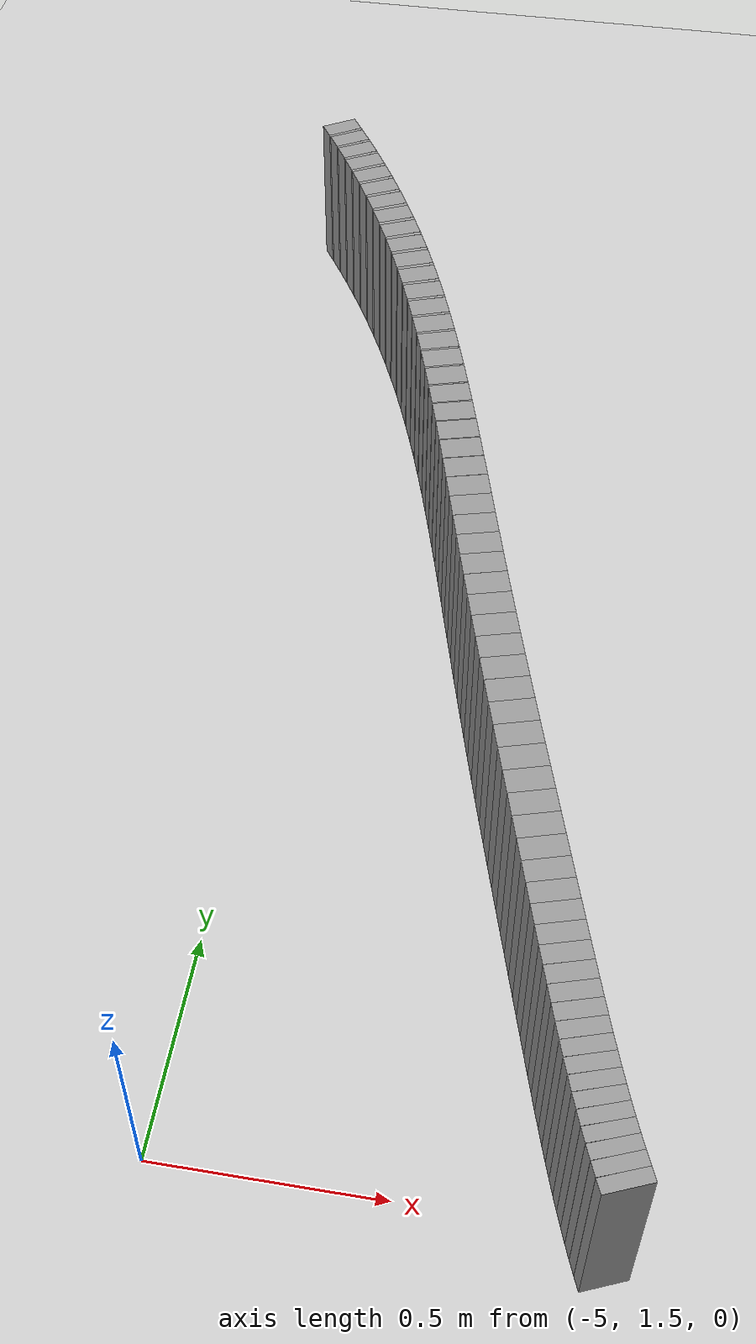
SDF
<sdf version="1.6">
 <world name="default">
  <include><uri>model://ground_plane</uri></include>
  <include><uri>model://sun</uri></include>
  <model name="wall_76_inward">
   <static>true</static>
   <link name="link">
    <collision name="collision">
     <geometry><box><size>0.030319023300365844 0.1 0.45</size></box></geometry>
    </collision>
    <visual name="visual">
     <geometry><box><size>0.030319023300365844 0.1 0.45</size></box></geometry>
     <material>
      <script><uri>file://media/materials/scripts/gazebo.material</uri><name>Gazebo/Gray</name></script>
     </material>
    </visual>
   </link>
   <pose>-4.083722998648623 1.42015074149503 0.225 0 0 1.9614236395496756</pose>
  </model>
  <model name="wall_77_inward">
   <static>true</static>
   <link name="link">
    <collision name="collision">
     <geometry><box><size>0.030381391725785217 0.1 0.45</size></box></geometry>
    </collision>
    <visual name="visual">
     <geometry><box><size>0.030381391725785217 0.1 0.45</size></box></geometry>
     <material>
      <script><uri>file://media/materials/scripts/gazebo.material</uri><name>Gazebo/Gray</name></script>
     </material>
    </visual>
   </link>
   <pose>-4.095088864896672 1.448291637710838 0.225 0 0 1.947895979240771</pose>
  </model>
  <model name="wall_78_inward">
   <static>true</static>
   <link name="link">
    <collision name="collision">
     <geometry><box><size>0.03056995240121738 0.1 0.45</size></box></geometry>
    </collision>
    <visual name="visual">
     <geometry><box><size>0.03056995240121738 0.1 0.45</size></box></geometry>
     <material>
      <script><uri>file://media/materials/scripts/gazebo.material</uri><name>Gazebo/Gray</name></script>
     </material>
    </visual>
   </link>
   <pose>-4.106127991504734 1.4766970253834102 0.225 0 0 1.935065525622302</pose>
  </model>
  <model name="wall_79_inward">
   <static>true</static>
   <link name="link">
    <collision name="collision">
     <geometry><box><size>0.030880842736962934 0.1 0.45</size></box></geometry>
    </collision>
    <visual name="visual">
     <geometry><box><size>0.030880842736962934 0.1 0.45</size></box></geometry>
     <material>
      <script><uri>file://media/materials/scripts/gazebo.material</uri><name>Gazebo/Gray</name></script>
     </material>
    </visual>
   </link>
   <pose>-4.116900733599415 1.5054713895411937 0.225 0 0 1.9230538203729624</pose>
  </model>
  <model name="wall_80_inward">
   <static>true</static>
   <link name="link">
    <collision name="collision">
     <geometry><box><size>0.0313265982805998 0.1 0.45</size></box></geometry>
    </collision>
    <visual name="visual">
     <geometry><box><size>0.0313265982805998 0.1 0.45</size></box></geometry>
     <material>
      <script><uri>file://media/materials/scripts/gazebo.material</uri><name>Gazebo/Gray</name></script>
     </material>
    </visual>
   </link>
   <pose>-4.127468715098411 1.5347242434167483 0.225 0 0 1.911965209870264</pose>
  </model>
  <model name="wall_81_inward">
   <static>true</static>
   <link name="link">
    <collision name="collision">
     <geometry><box><size>0.03191141682992299 0.1 0.45</size></box></geometry>
    </collision>
    <visual name="visual">
     <geometry><box><size>0.03191141682992299 0.1 0.45</size></box></geometry>
     <material>
      <script><uri>file://media/materials/scripts/gazebo.material</uri><name>Gazebo/Gray</name></script>
     </material>
    </visual>
   </link>
   <pose>-4.137896619692121 1.564573785705496 0.225 0 0 1.9019097405112775</pose>
  </model>
  <model name="wall_82_inward">
   <static>true</static>
   <link name="link">
    <collision name="collision">
     <geometry><box><size>0.03262443848653379 0.1 0.45</size></box></geometry>
    </collision>
    <visual name="visual">
     <geometry><box><size>0.03262443848653379 0.1 0.45</size></box></geometry>
     <material>
      <script><uri>file://media/materials/scripts/gazebo.material</uri><name>Gazebo/Gray</name></script>
     </material>
    </visual>
   </link>
   <pose>-4.148248470323871 1.595135812456744 0.225 0 0 1.892956235877337</pose>
  </model>
  <model name="wall_83_inward">
   <static>true</static>
   <link name="link">
    <collision name="collision">
     <geometry><box><size>0.033474792408341704 0.1 0.45</size></box></geometry>
    </collision>
    <visual name="visual">
     <geometry><box><size>0.033474792408341704 0.1 0.45</size></box></geometry>
     <material>
      <script><uri>file://media/materials/scripts/gazebo.material</uri><name>Gazebo/Gray</name></script>
     </material>
    </visual>
   </link>
   <pose>-4.15858770890194 1.6265262632300375 0.225 0 0 1.8851055922462476</pose>
  </model>
  <model name="wall_84_inward">
   <static>true</static>
   <link name="link">
    <collision name="collision">
     <geometry><box><size>0.03448067750370846 0.1 0.45</size></box></geometry>
    </collision>
    <visual name="visual">
     <geometry><box><size>0.03448067750370846 0.1 0.45</size></box></geometry>
     <material>
      <script><uri>file://media/materials/scripts/gazebo.material</uri><name>Gazebo/Gray</name></script>
     </material>
    </visual>
   </link>
   <pose>-4.1689820149863674 1.65887486222929 0.225 0 0 1.8783892637810817</pose>
  </model>
  <model name="wall_85_inward">
   <static>true</static>
   <link name="link">
    <collision name="collision">
     <geometry><box><size>0.035640017745385284 0.1 0.45</size></box></geometry>
    </collision>
    <visual name="visual">
     <geometry><box><size>0.035640017745385284 0.1 0.45</size></box></geometry>
     <material>
      <script><uri>file://media/materials/scripts/gazebo.material</uri><name>Gazebo/Gray</name></script>
     </material>
    </visual>
   </link>
   <pose>-4.179501851843207 1.692319613194485 0.225 0 0 1.8727873901990257</pose>
  </model>
  <model name="wall_86_inward">
   <static>true</static>
   <link name="link">
    <collision name="collision">
     <geometry><box><size>0.036971243010525935 0.1 0.45</size></box></geometry>
    </collision>
    <visual name="visual">
     <geometry><box><size>0.036971243010525935 0.1 0.45</size></box></geometry>
     <material>
      <script><uri>file://media/materials/scripts/gazebo.material</uri><name>Gazebo/Gray</name></script>
     </material>
    </visual>
   </link>
   <pose>-4.1902198125021854 1.7270070365175005 0.225 0 0 1.86825075929407</pose>
  </model>
  <model name="wall_87_inward">
   <static>true</static>
   <link name="link">
    <collision name="collision">
     <geometry><box><size>0.038470409050723214 0.1 0.45</size></box></geometry>
    </collision>
    <visual name="visual">
     <geometry><box><size>0.038470409050723214 0.1 0.45</size></box></geometry>
     <material>
      <script><uri>file://media/materials/scripts/gazebo.material</uri><name>Gazebo/Gray</name></script>
     </material>
    </visual>
   </link>
   <pose>-4.201210832708388 1.7630910194615392 0.225 0 0 1.8647465962478298</pose>
  </model>
  <model name="wall_88_inward">
   <static>true</static>
   <link name="link">
    <collision name="collision">
     <geometry><box><size>0.04011837200861201 0.1 0.45</size></box></geometry>
    </collision>
    <visual name="visual">
     <geometry><box><size>0.04011837200861201 0.1 0.45</size></box></geometry>
     <material>
      <script><uri>file://media/materials/scripts/gazebo.material</uri><name>Gazebo/Gray</name></script>
     </material>
    </visual>
   </link>
   <pose>-4.212546052525328 1.8007149391095922 0.225 0 0 1.8621561721947897</pose>
  </model>
  <model name="wall_89_inward">
   <static>true</static>
   <link name="link">
    <collision name="collision">
     <geometry><box><size>0.04190729564380184 0.1 0.45</size></box></geometry>
    </collision>
    <visual name="visual">
     <geometry><box><size>0.04190729564380184 0.1 0.45</size></box></geometry>
     <material>
      <script><uri>file://media/materials/scripts/gazebo.material</uri><name>Gazebo/Gray</name></script>
     </material>
    </visual>
   </link>
   <pose>-4.224291207717447 1.840010008996081 0.225 0 0 1.8603636086512862</pose>
  </model>
  <model name="wall_90_inward">
   <static>true</static>
   <link name="link">
    <collision name="collision">
     <geometry><box><size>0.04380874023937896 0.1 0.45</size></box></geometry>
    </collision>
    <visual name="visual">
     <geometry><box><size>0.04380874023937896 0.1 0.45</size></box></geometry>
     <material>
      <script><uri>file://media/materials/scripts/gazebo.material</uri><name>Gazebo/Gray</name></script>
     </material>
    </visual>
   </link>
   <pose>-4.236504903136588 1.8810908409309945 0.225 0 0 1.859226345151389</pose>
  </model>
  <model name="wall_91_inward">
   <static>true</static>
   <link name="link">
    <collision name="collision">
     <geometry><box><size>0.04579325214460293 0.1 0.45</size></box></geometry>
    </collision>
    <visual name="visual">
     <geometry><box><size>0.04579325214460293 0.1 0.45</size></box></geometry>
     <material>
      <script><uri>file://media/materials/scripts/gazebo.material</uri><name>Gazebo/Gray</name></script>
     </material>
    </visual>
   </link>
   <pose>-4.249234490659106 1.924045312863817 0.225 0 0 1.8585912795525938</pose>
  </model>
  <model name="wall_92_inward">
   <static>true</static>
   <link name="link">
    <collision name="collision">
     <geometry><box><size>0.047820306115570706 0.1 0.45</size></box></geometry>
    </collision>
    <visual name="visual">
     <geometry><box><size>0.047820306115570706 0.1 0.45</size></box></geometry>
     <material>
      <script><uri>file://media/materials/scripts/gazebo.material</uri><name>Gazebo/Gray</name></script>
     </material>
    </visual>
   </link>
   <pose>-4.262513613274464 1.9689289338387903 0.225 0 0 1.8583101306572916</pose>
  </model>
  <model name="wall_93_inward">
   <static>true</static>
   <link name="link">
    <collision name="collision">
     <geometry><box><size>0.049852039311536415 0.1 0.45</size></box></geometry>
    </collision>
    <visual name="visual">
     <geometry><box><size>0.049852039311536415 0.1 0.45</size></box></geometry>
     <material>
      <script><uri>file://media/materials/scripts/gazebo.material</uri><name>Gazebo/Gray</name></script>
     </material>
    </visual>
   </link>
   <pose>-4.276360370694459 2.0157609642385803 0.225 0 0 1.858240459196426</pose>
  </model>
  <model name="wall_94_inward">
   <static>true</static>
   <link name="link">
    <collision name="collision">
     <geometry><box><size>0.05180438762171166 0.1 0.45</size></box></geometry>
    </collision>
    <visual name="visual">
     <geometry><box><size>0.05180438762171166 0.1 0.45</size></box></geometry>
     <material>
      <script><uri>file://media/materials/scripts/gazebo.material</uri><name>Gazebo/Gray</name></script>
     </material>
    </visual>
   </link>
   <pose>-4.290770800846749 2.064503623037102 0.225 0 0 1.858261489854648</pose>
  </model>
  <model name="wall_95_inward">
   <static>true</static>
   <link name="link">
    <collision name="collision">
     <geometry><box><size>0.05366156399567377 0.1 0.45</size></box></geometry>
    </collision>
    <visual name="visual">
     <geometry><box><size>0.05366156399567377 0.1 0.45</size></box></geometry>
     <material>
      <script><uri>file://media/materials/scripts/gazebo.material</uri><name>Gazebo/Gray</name></script>
     </material>
    </visual>
   </link>
   <pose>-4.305721133446476 2.1150729249144646 0.225 0 0 1.8582365038689324</pose>
  </model>
  <model name="wall_96_inward">
   <static>true</static>
   <link name="link">
    <collision name="collision">
     <geometry><box><size>0.055356505274068296 0.1 0.45</size></box></geometry>
    </collision>
    <visual name="visual">
     <geometry><box><size>0.055356505274068296 0.1 0.45</size></box></geometry>
     <material>
      <script><uri>file://media/materials/scripts/gazebo.material</uri><name>Gazebo/Gray</name></script>
     </material>
    </visual>
   </link>
   <pose>-4.321170322254241 2.167346794150098 0.225 0 0 1.8580845666562595</pose>
  </model>
  <model name="wall_97_inward">
   <static>true</static>
   <link name="link">
    <collision name="collision">
     <geometry><box><size>0.05684174379270028 0.1 0.45</size></box></geometry>
    </collision>
    <visual name="visual">
     <geometry><box><size>0.05684174379270028 0.1 0.45</size></box></geometry>
     <material>
      <script><uri>file://media/materials/scripts/gazebo.material</uri><name>Gazebo/Gray</name></script>
     </material>
    </visual>
   </link>
   <pose>-4.337056513683885 2.221149587728097 0.225 0 0 1.8577307507502874</pose>
  </model>
  <model name="wall_98_inward">
   <static>true</static>
   <link name="link">
    <collision name="collision">
     <geometry><box><size>0.058089029679050906 0.1 0.45</size></box></geometry>
    </collision>
    <visual name="visual">
     <geometry><box><size>0.058089029679050906 0.1 0.45</size></box></geometry>
     <material>
      <script><uri>file://media/materials/scripts/gazebo.material</uri><name>Gazebo/Gray</name></script>
     </material>
    </visual>
   </link>
   <pose>-4.353302415311186 2.2762707363443493 0.225 0 0 1.8571001591001473</pose>
  </model>
  <model name="wall_99_inward">
   <static>true</static>
   <link name="link">
    <collision name="collision">
     <geometry><box><size>0.05908663020875237 0.1 0.45</size></box></geometry>
    </collision>
    <visual name="visual">
     <geometry><box><size>0.05908663020875237 0.1 0.45</size></box></geometry>
     <material>
      <script><uri>file://media/materials/scripts/gazebo.material</uri><name>Gazebo/Gray</name></script>
     </material>
    </visual>
   </link>
   <pose>-4.369821257920856 2.332481597270765 0.225 0 0 1.8561526930244687</pose>
  </model>
  <model name="wall_100_inward">
   <static>true</static>
   <link name="link">
    <collision name="collision">
     <geometry><box><size>0.059841898510846134 0.1 0.45</size></box></geometry>
    </collision>
    <visual name="visual">
     <geometry><box><size>0.059841898510846134 0.1 0.45</size></box></geometry>
     <material>
      <script><uri>file://media/materials/scripts/gazebo.material</uri><name>Gazebo/Gray</name></script>
     </material>
    </visual>
   </link>
   <pose>-4.386523471320006 2.3895520216642803 0.225 0 0 1.8548662227222592</pose>
  </model>
  <model name="wall_101_inward">
   <static>true</static>
   <link name="link">
    <collision name="collision">
     <geometry><box><size>0.06037321674631728 0.1 0.45</size></box></geometry>
    </collision>
    <visual name="visual">
     <geometry><box><size>0.06037321674631728 0.1 0.45</size></box></geometry>
     <material>
      <script><uri>file://media/materials/scripts/gazebo.material</uri><name>Gazebo/Gray</name></script>
     </material>
    </visual>
   </link>
   <pose>-4.403322500401475 2.447264314383326 0.225 0 0 1.8532446122125774</pose>
  </model>
  <model name="wall_102_inward">
   <static>true</static>
   <link name="link">
    <collision name="collision">
     <geometry><box><size>0.06072071834924461 0.1 0.45</size></box></geometry>
    </collision>
    <visual name="visual">
     <geometry><box><size>0.06072071834924461 0.1 0.45</size></box></geometry>
     <material>
      <script><uri>file://media/materials/scripts/gazebo.material</uri><name>Gazebo/Gray</name></script>
     </material>
    </visual>
   </link>
   <pose>-4.420140676045596 2.5054285712715174 0.225 0 0 1.8512993798372717</pose>
  </model>
  <model name="wall_103_inward">
   <static>true</static>
   <link name="link">
    <collision name="collision">
     <geometry><box><size>0.06094398111122464 0.1 0.45</size></box></geometry>
    </collision>
    <visual name="visual">
     <geometry><box><size>0.06094398111122464 0.1 0.45</size></box></geometry>
     <material>
      <script><uri>file://media/materials/scripts/gazebo.material</uri><name>Gazebo/Gray</name></script>
     </material>
    </visual>
   </link>
   <pose>-4.436916444198189 2.5639020166986497 0.225 0 0 1.8490801075710135</pose>
  </model>
  <model name="wall_104_inward">
   <static>true</static>
   <link name="link">
    <collision name="collision">
     <geometry><box><size>0.06109926342683872 0.1 0.45</size></box></geometry>
    </collision>
    <visual name="visual">
     <geometry><box><size>0.06109926342683872 0.1 0.45</size></box></geometry>
     <material>
      <script><uri>file://media/materials/scripts/gazebo.material</uri><name>Gazebo/Gray</name></script>
     </material>
    </visual>
   </link>
   <pose>-4.453608687352513 2.622596156146551 0.225 0 0 1.8466722286393193</pose>
  </model>
  <model name="wall_105_inward">
   <static>true</static>
   <link name="link">
    <collision name="collision">
     <geometry><box><size>0.06124799802506695 0.1 0.45</size></box></geometry>
    </collision>
    <visual name="visual">
     <geometry><box><size>0.06124799802506695 0.1 0.45</size></box></geometry>
     <material>
      <script><uri>file://media/materials/scripts/gazebo.material</uri><name>Gazebo/Gray</name></script>
     </material>
    </visual>
   </link>
   <pose>-4.47019817499509 2.681477359983434 0.225 0 0 1.8441757637756673</pose>
  </model>
  <model name="wall_106_inward">
   <static>true</static>
   <link name="link">
    <collision name="collision">
     <geometry><box><size>0.06144541243217268 0.1 0.45</size></box></geometry>
    </collision>
    <visual name="visual">
     <geometry><box><size>0.06144541243217268 0.1 0.45</size></box></geometry>
     <material>
      <script><uri>file://media/materials/scripts/gazebo.material</uri><name>Gazebo/Gray</name></script>
     </material>
    </visual>
   </link>
   <pose>-4.486688430696326 2.7405661410998943 0.225 0 0 1.841724023893348</pose>
  </model>
  <model name="wall_107_inward">
   <static>true</static>
   <link name="link">
    <collision name="collision">
     <geometry><box><size>0.061732324679020026 0.1 0.45</size></box></geometry>
    </collision>
    <visual name="visual">
     <geometry><box><size>0.061732324679020026 0.1 0.45</size></box></geometry>
     <material>
      <script><uri>file://media/materials/scripts/gazebo.material</uri><name>Gazebo/Gray</name></script>
     </material>
    </visual>
   </link>
   <pose>-4.503104369669213 2.7999269100924487 0.225 0 0 1.8394783673283182</pose>
  </model>
  <model name="wall_108_inward">
   <static>true</static>
   <link name="link">
    <collision name="collision">
     <geometry><box><size>0.0621304337324034 0.1 0.45</size></box></geometry>
    </collision>
    <visual name="visual">
     <geometry><box><size>0.0621304337324034 0.1 0.45</size></box></geometry>
     <material>
      <script><uri>file://media/materials/scripts/gazebo.material</uri><name>Gazebo/Gray</name></script>
     </material>
    </visual>
   </link>
   <pose>-4.519488414553052 2.859651740897516 0.225 0 0 1.8375984050319185</pose>
  </model>
  <model name="wall_109_inward">
   <static>true</static>
   <link name="link">
    <collision name="collision">
     <geometry><box><size>0.06264286259250092 0.1 0.45</size></box></geometry>
    </collision>
    <visual name="visual">
     <geometry><box><size>0.06264286259250092 0.1 0.45</size></box></geometry>
     <material>
      <script><uri>file://media/materials/scripts/gazebo.material</uri><name>Gazebo/Gray</name></script>
     </material>
    </visual>
   </link>
   <pose>-4.535896035528889 2.9198421229828218 0.225 0 0 1.8362583465192195</pose>
  </model>
  <model name="wall_110_inward">
   <static>true</static>
   <link name="link">
    <collision name="collision">
     <geometry><box><size>0.06331448015992262 0.1 0.45</size></box></geometry>
    </collision>
    <visual name="visual">
     <geometry><box><size>0.06331448015992262 0.1 0.45</size></box></geometry>
     <material>
      <script><uri>file://media/materials/scripts/gazebo.material</uri><name>Gazebo/Gray</name></script>
     </material>
    </visual>
   </link>
   <pose>-4.5523988726358695 2.980620153498144 0.225 0 0 1.8356056508173113</pose>
  </model>
  <model name="wall_111_inward">
   <static>true</static>
   <link name="link">
    <collision name="collision">
     <geometry><box><size>0.06354831522763611 0.1 0.45</size></box></geometry>
    </collision>
    <visual name="visual">
     <geometry><box><size>0.06354831522763611 0.1 0.45</size></box></geometry>
     <material>
      <script><uri>file://media/materials/scripts/gazebo.material</uri><name>Gazebo/Gray</name></script>
     </material>
    </visual>
   </link>
   <pose>-4.569006290378298 3.0418389075943093 0.225 0 0 1.8357954303126705</pose>
  </model>
  <model name="wall_112_inward">
   <static>true</static>
   <link name="link">
    <collision name="collision">
     <geometry><box><size>0.0006860600713652756 0.1 0.45</size></box></geometry>
    </collision>
    <visual name="visual">
     <geometry><box><size>0.0006860600713652756 0.1 0.45</size></box></geometry>
     <material>
      <script><uri>file://media/materials/scripts/gazebo.material</uri><name>Gazebo/Gray</name></script>
     </material>
    </visual>
   </link>
   <pose>-4.577418240958635 3.072834920666713 0.225 0 0 1.8363671470700413</pose>
  </model>
  <model name="wall_113_inward">
   <static>true</static>
   <link name="link">
    <collision name="collision">
     <geometry><box><size>0.06367193468015217 0.1 0.45</size></box></geometry>
    </collision>
    <visual name="visual">
     <geometry><box><size>0.06367193468015217 0.1 0.45</size></box></geometry>
     <material>
      <script><uri>file://media/materials/scripts/gazebo.material</uri><name>Gazebo/Gray</name></script>
     </material>
    </visual>
   </link>
   <pose>-4.585881506174118 3.103881031702267 0.225 0 0 1.8369388638272361</pose>
  </model>
  <model name="wall_114_inward">
   <static>true</static>
   <link name="link">
    <collision name="collision">
     <geometry><box><size>0.0013253729234114478 0.1 0.45</size></box></geometry>
    </collision>
    <visual name="visual">
     <geometry><box><size>0.0013253729234114478 0.1 0.45</size></box></geometry>
     <material>
      <script><uri>file://media/materials/scripts/gazebo.material</uri><name>Gazebo/Gray</name></script>
     </material>
    </visual>
   </link>
   <pose>-4.594429740058795 3.135235300480936 0.225 0 0 1.8380433414881876</pose>
  </model>
  <model name="wall_115_inward">
   <static>true</static>
   <link name="link">
    <collision name="collision">
     <geometry><box><size>0.06374290953066791 0.1 0.45</size></box></geometry>
    </collision>
    <visual name="visual">
     <geometry><box><size>0.06374290953066791 0.1 0.45</size></box></geometry>
     <material>
      <script><uri>file://media/materials/scripts/gazebo.material</uri><name>Gazebo/Gray</name></script>
     </material>
    </visual>
   </link>
   <pose>-4.60305521097532 3.1666052155443287 0.225 0 0 1.8391478191486952</pose>
  </model>
  <model name="wall_116_inward">
   <static>true</static>
   <link name="link">
    <collision name="collision">
     <geometry><box><size>0.0020263044671635696 0.1 0.45</size></box></geometry>
    </collision>
    <visual name="visual">
     <geometry><box><size>0.0020263044671635696 0.1 0.45</size></box></geometry>
     <material>
      <script><uri>file://media/materials/scripts/gazebo.material</uri><name>Gazebo/Gray</name></script>
     </material>
    </visual>
   </link>
   <pose>-4.611775960205207 3.198312404291857 0.225 0 0 1.840836407006958</pose>
  </model>
  <model name="wall_117_inward">
   <static>true</static>
   <link name="link">
    <collision name="collision">
     <geometry><box><size>0.06373560857271979 0.1 0.45</size></box></geometry>
    </collision>
    <visual name="visual">
     <geometry><box><size>0.06373560857271979 0.1 0.45</size></box></geometry>
     <material>
      <script><uri>file://media/materials/scripts/gazebo.material</uri><name>Gazebo/Gray</name></script>
     </material>
    </visual>
   </link>
   <pose>-4.620599464422429 3.2299873625859776 0.225 0 0 1.8425249948655409</pose>
  </model>
  <model name="wall_118_inward">
   <static>true</static>
   <link name="link">
    <collision name="collision">
     <geometry><box><size>0.00278733055572275 0.1 0.45</size></box></geometry>
    </collision>
    <visual name="visual">
     <geometry><box><size>0.00278733055572275 0.1 0.45</size></box></geometry>
     <material>
      <script><uri>file://media/materials/scripts/gazebo.material</uri><name>Gazebo/Gray</name></script>
     </material>
    </visual>
   </link>
   <pose>-4.629529863025474 3.2620275420289975 0.225 0 0 1.8448477724173562</pose>
  </model>
  <model name="wall_119_inward">
   <static>true</static>
   <link name="link">
    <collision name="collision">
     <geometry><box><size>0.06362995978777887 0.1 0.45</size></box></geometry>
    </collision>
    <visual name="visual">
     <geometry><box><size>0.06362995978777887 0.1 0.45</size></box></geometry>
     <material>
      <script><uri>file://media/materials/scripts/gazebo.material</uri><name>Gazebo/Gray</name></script>
     </material>
    </visual>
   </link>
   <pose>-4.638588366345935 3.293976836113722 0.225 0 0 1.8471705499691016</pose>
  </model>
  <model name="wall_120_inward">
   <static>true</static>
   <link name="link">
    <collision name="collision">
     <geometry><box><size>0.0035950839833904552 0.1 0.45</size></box></geometry>
    </collision>
    <visual name="visual">
     <geometry><box><size>0.0035950839833904552 0.1 0.45</size></box></geometry>
     <material>
      <script><uri>file://media/materials/scripts/gazebo.material</uri><name>Gazebo/Gray</name></script>
     </material>
    </visual>
   </link>
   <pose>-4.647765369255858 3.3263123233035716 0.225 0 0 1.8501664577701709</pose>
  </model>
  <model name="wall_121_inward">
   <static>true</static>
   <link name="link">
    <collision name="collision">
     <geometry><box><size>0.06341443305163365 0.1 0.45</size></box></geometry>
    </collision>
    <visual name="visual">
     <geometry><box><size>0.06341443305163365 0.1 0.45</size></box></geometry>
     <material>
      <script><uri>file://media/materials/scripts/gazebo.material</uri><name>Gazebo/Gray</name></script>
     </material>
    </visual>
   </link>
   <pose>-4.65709558457425 3.3584917486227504 0.225 0 0 1.8531623655713019</pose>
  </model>
  <model name="wall_122_inward">
   <static>true</static>
   <link name="link">
    <collision name="collision">
     <geometry><box><size>0.004447464041371159 0.1 0.45</size></box></geometry>
    </collision>
    <visual name="visual">
     <geometry><box><size>0.004447464041371159 0.1 0.45</size></box></geometry>
     <material>
      <script><uri>file://media/materials/scripts/gazebo.material</uri><name>Gazebo/Gray</name></script>
     </material>
    </visual>
   </link>
   <pose>-4.6665576339489245 3.39107668260129 0.225 0 0 1.8568685940907488</pose>
  </model>
  <model name="wall_123_inward">
   <static>true</static>
   <link name="link">
    <collision name="collision">
     <geometry><box><size>0.06308618477273262 0.1 0.45</size></box></geometry>
    </collision>
    <visual name="visual">
     <geometry><box><size>0.06308618477273262 0.1 0.45</size></box></geometry>
     <material>
      <script><uri>file://media/materials/scripts/gazebo.material</uri><name>Gazebo/Gray</name></script>
     </material>
    </visual>
   </link>
   <pose>-4.676198262720682 3.423438013598706 0.225 0 0 1.8605748226099872</pose>
  </model>
  <model name="wall_124_inward">
   <static>true</static>
   <link name="link">
    <collision name="collision">
     <geometry><box><size>0.0053516155500804435 0.1 0.45</size></box></geometry>
    </collision>
    <visual name="visual">
     <geometry><box><size>0.0053516155500804435 0.1 0.45</size></box></geometry>
     <material>
      <script><uri>file://media/materials/scripts/gazebo.material</uri><name>Gazebo/Gray</name></script>
     </material>
    </visual>
   </link>
   <pose>-4.685987398100402 3.4562267964076323 0.225 0 0 1.8650345170181235</pose>
  </model>
  <model name="wall_125_inward">
   <static>true</static>
   <link name="link">
    <collision name="collision">
     <geometry><box><size>0.06265091986403588 0.1 0.45</size></box></geometry>
    </collision>
    <visual name="visual">
     <geometry><box><size>0.06265091986403588 0.1 0.45</size></box></geometry>
     <material>
      <script><uri>file://media/materials/scripts/gazebo.material</uri><name>Gazebo/Gray</name></script>
     </material>
    </visual>
   </link>
   <pose>-4.6959817424160715 3.48872599055589 0.225 0 0 1.8694942114261925</pose>
  </model>
  <model name="wall_126_inward">
   <static>true</static>
   <link name="link">
    <collision name="collision">
     <geometry><box><size>0.006279105338716862 0.1 0.45</size></box></geometry>
    </collision>
    <visual name="visual">
     <geometry><box><size>0.006279105338716862 0.1 0.45</size></box></geometry>
     <material>
      <script><uri>file://media/materials/scripts/gazebo.material</uri><name>Gazebo/Gray</name></script>
     </material>
    </visual>
   </link>
   <pose>-4.706139656314409 3.5216600335215613 0.225 0 0 1.8747268230866354</pose>
  </model>
  <model name="wall_127_inward">
   <static>true</static>
   <link name="link">
    <collision name="collision">
     <geometry><box><size>0.0621236163335453 0.1 0.45</size></box></geometry>
    </collision>
    <visual name="visual">
     <geometry><box><size>0.0621236163335453 0.1 0.45</size></box></geometry>
     <material>
      <script><uri>file://media/materials/scripts/gazebo.material</uri><name>Gazebo/Gray</name></script>
     </material>
    </visual>
   </link>
   <pose>-4.71653015247955 3.55424481528187 0.225 0 0 1.8799594347473638</pose>
  </model>
  <model name="wall_128_inward">
   <static>true</static>
   <link name="link">
    <collision name="collision">
     <geometry><box><size>0.007232373321215001 0.1 0.45</size></box></geometry>
    </collision>
    <visual name="visual">
     <geometry><box><size>0.007232373321215001 0.1 0.45</size></box></geometry>
     <material>
      <script><uri>file://media/materials/scripts/gazebo.material</uri><name>Gazebo/Gray</name></script>
     </material>
    </visual>
   </link>
   <pose>-4.727102073594963 3.5872719818116288 0.225 0 0 1.8859864490033216</pose>
  </model>
  <model name="wall_129_inward">
   <static>true</static>
   <link name="link">
    <collision name="collision">
     <geometry><box><size>0.061525455094063965 0.1 0.45</size></box></geometry>
    </collision>
    <visual name="visual">
     <geometry><box><size>0.061525455094063965 0.1 0.45</size></box></geometry>
     <material>
      <script><uri>file://media/materials/scripts/gazebo.material</uri><name>Gazebo/Gray</name></script>
     </material>
    </visual>
   </link>
   <pose>-4.737935541365079 3.6198992967067225 0.225 0 0 1.8920134632594747</pose>
  </model>
  <model name="wall_130_inward">
   <static>true</static>
   <link name="link">
    <collision name="collision">
     <geometry><box><size>0.008159378748939483 0.1 0.45</size></box></geometry>
    </collision>
    <visual name="visual">
     <geometry><box><size>0.008159378748939483 0.1 0.45</size></box></geometry>
     <material>
      <script><uri>file://media/materials/scripts/gazebo.material</uri><name>Gazebo/Gray</name></script>
     </material>
    </visual>
   </link>
   <pose>-4.7489623388061375 3.652950740740417 0.225 0 0 1.8988129979447157</pose>
  </model>
  <model name="wall_131_inward">
   <static>true</static>
   <link name="link">
    <collision name="collision">
     <geometry><box><size>0.060883144802710475 0.1 0.45</size></box></geometry>
    </collision>
    <visual name="visual">
     <geometry><box><size>0.060883144802710475 0.1 0.45</size></box></geometry>
     <material>
      <script><uri>file://media/materials/scripts/gazebo.material</uri><name>Gazebo/Gray</name></script>
     </material>
    </visual>
   </link>
   <pose>-4.760279642695419 3.6855640877847673 0.225 0 0 1.90561253262995</pose>
  </model>
  <model name="wall_132_inward">
   <static>true</static>
   <link name="link">
    <collision name="collision">
     <geometry><box><size>0.009033026784838652 0.1 0.45</size></box></geometry>
    </collision>
    <visual name="visual">
     <geometry><box><size>0.009033026784838652 0.1 0.45</size></box></geometry>
     <material>
      <script><uri>file://media/materials/scripts/gazebo.material</uri><name>Gazebo/Gray</name></script>
     </material>
    </visual>
   </link>
   <pose>-4.771798783639104 3.71856968372712 0.225 0 0 1.9131401260419048</pose>
  </model>
  <model name="wall_133_inward">
   <static>true</static>
   <link name="link">
    <collision name="collision">
     <geometry><box><size>0.06022024626368825 0.1 0.45</size></box></geometry>
    </collision>
    <visual name="visual">
     <geometry><box><size>0.06022024626368825 0.1 0.45</size></box></geometry>
     <material>
      <script><uri>file://media/materials/scripts/gazebo.material</uri><name>Gazebo/Gray</name></script>
     </material>
    </visual>
   </link>
   <pose>-4.783636015731678 3.7511100615279647 0.225 0 0 1.9206677194537916</pose>
  </model>
  <model name="wall_134_inward">
   <static>true</static>
   <link name="link">
    <collision name="collision">
     <geometry><box><size>0.009811912279375959 0.1 0.45</size></box></geometry>
    </collision>
    <visual name="visual">
     <geometry><box><size>0.009811912279375959 0.1 0.45</size></box></geometry>
     <material>
      <script><uri>file://media/materials/scripts/gazebo.material</uri><name>Gazebo/Gray</name></script>
     </material>
    </visual>
   </link>
   <pose>-4.795676349698656 3.783990850590125 0.225 0 0 1.928844404132657</pose>
  </model>
  <model name="wall_135_inward">
   <static>true</static>
   <link name="link">
    <collision name="collision">
     <geometry><box><size>0.059560118421157125 0.1 0.45</size></box></geometry>
    </collision>
    <visual name="visual">
     <geometry><box><size>0.059560118421157125 0.1 0.45</size></box></geometry>
     <material>
      <script><uri>file://media/materials/scripts/gazebo.material</uri><name>Gazebo/Gray</name></script>
     </material>
    </visual>
   </link>
   <pose>-4.808059660050512 3.8163909048756723 0.225 0 0 1.9370210888115402</pose>
  </model>
  <model name="wall_136_inward">
   <static>true</static>
   <link name="link">
    <collision name="collision">
     <geometry><box><size>0.010456168870364864 0.1 0.45</size></box></geometry>
    </collision>
    <visual name="visual">
     <geometry><box><size>0.010456168870364864 0.1 0.45</size></box></geometry>
     <material>
      <script><uri>file://media/materials/scripts/gazebo.material</uri><name>Gazebo/Gray</name></script>
     </material>
    </visual>
   </link>
   <pose>-4.820638297717019 3.849061016213785 0.225 0 0 1.9457346731351575</pose>
  </model>
  <model name="wall_137_inward">
   <static>true</static>
   <link name="link">
    <collision name="collision">
     <geometry><box><size>0.05891815177044879 0.1 0.45</size></box></geometry>
    </collision>
    <visual name="visual">
     <geometry><box><size>0.05891815177044879 0.1 0.45</size></box></geometry>
     <material>
      <script><uri>file://media/materials/scripts/gazebo.material</uri><name>Gazebo/Gray</name></script>
     </material>
    </visual>
   </link>
   <pose>-4.8335797107257354 3.8812434217595606 0.225 0 0 1.954448257458782</pose>
  </model>
  <model name="wall_138_inward">
   <static>true</static>
   <link name="link">
    <collision name="collision">
     <geometry><box><size>0.010934333130467808 0.1 0.45</size></box></geometry>
    </collision>
    <visual name="visual">
     <geometry><box><size>0.010934333130467808 0.1 0.45</size></box></geometry>
     <material>
      <script><uri>file://media/materials/scripts/gazebo.material</uri><name>Gazebo/Gray</name></script>
     </material>
    </visual>
   </link>
   <pose>-4.846699041930629 3.913611804294779 0.225 0 0 1.9635603278292908</pose>
  </model>
  <model name="wall_139_inward">
   <static>true</static>
   <link name="link">
    <collision name="collision">
     <geometry><box><size>0.058302557341831304 0.1 0.45</size></box></geometry>
    </collision>
    <visual name="visual">
     <geometry><box><size>0.058302557341831304 0.1 0.45</size></box></geometry>
     <material>
      <script><uri>file://media/materials/scripts/gazebo.material</uri><name>Gazebo/Gray</name></script>
     </material>
    </visual>
   </link>
   <pose>-4.8601939592251195 3.945491432978388 0.225 0 0 1.9726723981997214</pose>
  </model>
  <model name="wall_140_inward">
   <static>true</static>
   <link name="link">
    <collision name="collision">
     <geometry><box><size>0.011217990205225247 0.1 0.45</size></box></geometry>
    </collision>
    <visual name="visual">
     <geometry><box><size>0.011217990205225247 0.1 0.45</size></box></geometry>
     <material>
      <script><uri>file://media/materials/scripts/gazebo.material</uri><name>Gazebo/Gray</name></script>
     </material>
    </visual>
   </link>
   <pose>-4.8738384497913865 3.977461578746077 0.225 0 0 1.9820208595362954</pose>
  </model>
  <model name="wall_141_inward">
   <static>true</static>
   <link name="link">
    <collision name="collision">
     <geometry><box><size>0.05771240240087872 0.1 0.45</size></box></geometry>
    </collision>
    <visual name="visual">
     <geometry><box><size>0.05771240240087872 0.1 0.45</size></box></geometry>
     <material>
      <script><uri>file://media/materials/scripts/gazebo.material</uri><name>Gazebo/Gray</name></script>
     </material>
    </visual>
   </link>
   <pose>-4.8878620581830425 4.008944495049023 0.225 0 0 1.9913693208728738</pose>
  </model>
  <model name="wall_142_inward">
   <static>true</static>
   <link name="link">
    <collision name="collision">
     <geometry><box><size>0.011317348287727349 0.1 0.45</size></box></geometry>
    </collision>
    <visual name="visual">
     <geometry><box><size>0.011317348287727349 0.1 0.45</size></box></geometry>
     <material>
      <script><uri>file://media/materials/scripts/gazebo.material</uri><name>Gazebo/Gray</name></script>
     </material>
    </visual>
   </link>
   <pose>-4.902002529262528 4.040429557754135 0.225 0 0 2.0008005842617647</pose>
  </model>
  <model name="wall_143_inward">
   <static>true</static>
   <link name="link">
    <collision name="collision">
     <geometry><box><size>0.057134194435478854 0.1 0.45</size></box></geometry>
    </collision>
    <visual name="visual">
     <geometry><box><size>0.057134194435478854 0.1 0.45</size></box></geometry>
     <material>
      <script><uri>file://media/materials/scripts/gazebo.material</uri><name>Gazebo/Gray</name></script>
     </material>
    </visual>
   </link>
   <pose>-4.916514749761006 4.0714260817992 0.225 0 0 2.010231847650806</pose>
  </model>
  <model name="wall_144_inward">
   <static>true</static>
   <link name="link">
    <collision name="collision">
     <geometry><box><size>0.011230111301918018 0.1 0.45</size></box></geometry>
    </collision>
    <visual name="visual">
     <geometry><box><size>0.011230111301918018 0.1 0.45</size></box></geometry>
     <material>
      <script><uri>file://media/materials/scripts/gazebo.material</uri><name>Gazebo/Gray</name></script>
     </material>
    </visual>
   </link>
   <pose>-4.931104269049248 4.10233807709235 0.225 0 0 2.019590410343208</pose>
  </model>
  <model name="wall_145_inward">
   <static>true</static>
   <link name="link">
    <collision name="collision">
     <geometry><box><size>0.05655046825602034 0.1 0.45</size></box></geometry>
    </collision>
    <visual name="visual">
     <geometry><box><size>0.05655046825602034 0.1 0.45</size></box></geometry>
     <material>
      <script><uri>file://media/materials/scripts/gazebo.material</uri><name>Gazebo/Gray</name></script>
     </material>
    </visual>
   </link>
   <pose>-4.946046436311995 4.132756319540806 0.225 0 0 2.028948973035522</pose>
  </model>
  <model name="wall_146_inward">
   <static>true</static>
   <link name="link">
    <collision name="collision">
     <geometry><box><size>0.011005214809377961 0.1 0.45</size></box></geometry>
    </collision>
    <visual name="visual">
     <geometry><box><size>0.011005214809377961 0.1 0.45</size></box></geometry>
     <material>
      <script><uri>file://media/materials/scripts/gazebo.material</uri><name>Gazebo/Gray</name></script>
     </material>
    </visual>
   </link>
   <pose>-4.961031264007236 4.163028161757712 0.225 0 0 2.0381201139399554</pose>
  </model>
  <model name="wall_147_inward">
   <static>true</static>
   <link name="link">
    <collision name="collision">
     <geometry><box><size>0.05593470864761986 0.1 0.45</size></box></geometry>
    </collision>
    <visual name="visual">
     <geometry><box><size>0.05593470864761986 0.1 0.45</size></box></geometry>
     <material>
      <script><uri>file://media/materials/scripts/gazebo.material</uri><name>Gazebo/Gray</name></script>
     </material>
    </visual>
   </link>
   <pose>-4.976337893852705 4.192792779629057 0.225 0 0 2.0472912548444246</pose>
  </model>
  <model name="wall_148_inward">
   <static>true</static>
   <link name="link">
    <collision name="collision">
     <geometry><box><size>0.010669059149196546 0.1 0.45</size></box></geometry>
    </collision>
    <visual name="visual">
     <geometry><box><size>0.010669059149196546 0.1 0.45</size></box></geometry>
     <material>
      <script><uri>file://media/materials/scripts/gazebo.material</uri><name>Gazebo/Gray</name></script>
     </material>
    </visual>
   </link>
   <pose>-4.991654429961243 4.222363160066815 0.225 0 0 2.0561822546070725</pose>
  </model>
  <model name="wall_149_inward">
   <static>true</static>
   <link name="link">
    <collision name="collision">
     <geometry><box><size>0.055258927858527054 0.1 0.45</size></box></geometry>
    </collision>
    <visual name="visual">
     <geometry><box><size>0.055258927858527054 0.1 0.45</size></box></geometry>
     <material>
      <script><uri>file://media/materials/scripts/gazebo.material</uri><name>Gazebo/Gray</name></script>
     </material>
    </visual>
   </link>
   <pose>-5.007250539714607 4.2514040721940844 0.225 0 0 2.065073254369638</pose>
  </model>
  <model name="wall_150_inward">
   <static>true</static>
   <link name="link">
    <collision name="collision">
     <geometry><box><size>0.0102861479164594 0.1 0.45</size></box></geometry>
    </collision>
    <visual name="visual">
     <geometry><box><size>0.0102861479164594 0.1 0.45</size></box></geometry>
     <material>
      <script><uri>file://media/materials/scripts/gazebo.material</uri><name>Gazebo/Gray</name></script>
     </material>
    </visual>
   </link>
   <pose>-5.022836395113201 4.280233049109362 0.225 0 0 2.0736451492729957</pose>
  </model>
  <model name="wall_151_inward">
   <static>true</static>
   <link name="link">
    <collision name="collision">
     <geometry><box><size>0.05449752348793969 0.1 0.45</size></box></geometry>
    </collision>
    <visual name="visual">
     <geometry><box><size>0.05449752348793969 0.1 0.45</size></box></geometry>
     <material>
      <script><uri>file://media/materials/scripts/gazebo.material</uri><name>Gazebo/Gray</name></script>
     </material>
    </visual>
   </link>
   <pose>-5.038650962600503 4.308501762877668 0.225 0 0 2.082217044176433</pose>
  </model>
  <model name="wall_152_inward">
   <static>true</static>
   <link name="link">
    <collision name="collision">
     <geometry><box><size>0.00990330755639005 0.1 0.45</size></box></geometry>
    </collision>
    <visual name="visual">
     <geometry><box><size>0.00990330755639005 0.1 0.45</size></box></geometry>
     <material>
      <script><uri>file://media/materials/scripts/gazebo.material</uri><name>Gazebo/Gray</name></script>
     </material>
    </visual>
   </link>
   <pose>-5.054445936581789 4.336561990371513 0.225 0 0 2.0904698941560844</pose>
  </model>
  <model name="wall_153_inward">
   <static>true</static>
   <link name="link">
    <collision name="collision">
     <geometry><box><size>0.0536270861326709 0.1 0.45</size></box></geometry>
    </collision>
    <visual name="visual">
     <geometry><box><size>0.0536270861326709 0.1 0.45</size></box></geometry>
     <material>
      <script><uri>file://media/materials/scripts/gazebo.material</uri><name>Gazebo/Gray</name></script>
     </material>
    </visual>
   </link>
   <pose>-5.070412050886613 4.364022905899434 0.225 0 0 2.0987227441356886</pose>
  </model>
  <model name="wall_154_inward">
   <static>true</static>
   <link name="link">
    <collision name="collision">
     <geometry><box><size>0.009574128548478155 0.1 0.45</size></box></geometry>
    </collision>
    <visual name="visual">
     <geometry><box><size>0.009574128548478155 0.1 0.45</size></box></geometry>
     <material>
      <script><uri>file://media/materials/scripts/gazebo.material</uri><name>Gazebo/Gray</name></script>
     </material>
    </visual>
   </link>
   <pose>-5.086363557161848 4.391301829283803 0.225 0 0 2.1067012692405487</pose>
  </model>
  <model name="wall_155_inward">
   <static>true</static>
   <link name="link">
    <collision name="collision">
     <geometry><box><size>0.052634330777982706 0.1 0.45</size></box></geometry>
    </collision>
    <visual name="visual">
     <geometry><box><size>0.052634330777982706 0.1 0.45</size></box></geometry>
     <material>
      <script><uri>file://media/materials/scripts/gazebo.material</uri><name>Gazebo/Gray</name></script>
     </material>
    </visual>
   </link>
   <pose>-5.10242608378185 4.417937525669494 0.225 0 0 2.114679794345248</pose>
  </model>
  <model name="wall_156_inward">
   <static>true</static>
   <link name="link">
    <collision name="collision">
     <geometry><box><size>0.00933093422154927 0.1 0.45</size></box></geometry>
    </collision>
    <visual name="visual">
     <geometry><box><size>0.00933093422154927 0.1 0.45</size></box></geometry>
     <material>
      <script><uri>file://media/materials/scripts/gazebo.material</uri><name>Gazebo/Gray</name></script>
     </material>
    </visual>
   </link>
   <pose>-5.11848941943172 4.44443064440957 0.225 0 0 2.1224556512227797</pose>
  </model>
  <model name="wall_157_inward">
   <static>true</static>
   <link name="link">
    <collision name="collision">
     <geometry><box><size>0.051513410127525354 0.1 0.45</size></box></geometry>
    </collision>
    <visual name="visual">
     <geometry><box><size>0.051513410127525354 0.1 0.45</size></box></geometry>
     <material>
      <script><uri>file://media/materials/scripts/gazebo.material</uri><name>Gazebo/Gray</name></script>
     </material>
    </visual>
   </link>
   <pose>-5.134603874282133 4.470234241812891 0.225 0 0 2.130231508100364</pose>
  </model>
 </world>
</sdf>
